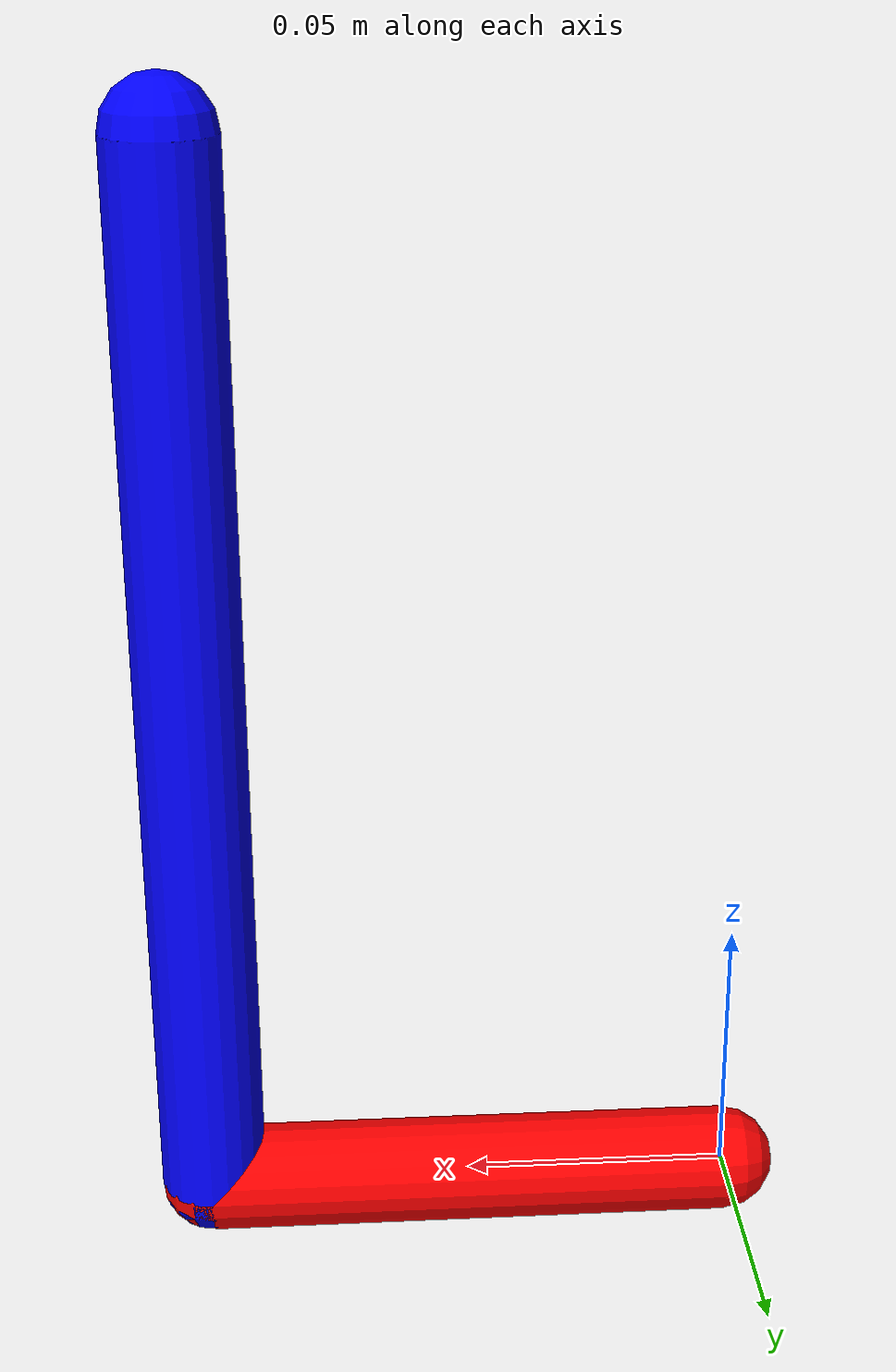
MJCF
<mujoco model="qube-servo">
    <option gravity="0 0 0"/> <!-- Sin gravedad -->
    <worldbody>
        <!-- Base fija -->
        <body name="base" pos="0 0 0">
            <!-- Primer brazo: rotación horizontal (ángulo phi) -->
            <joint name="joint_phi" type="hinge" axis="0 0 1" limited="true" range="-1.57 1.57"/>
            <geom type="capsule" fromto="0 0 0 0.1 0 0" size="0.01" rgba="1 0 0 1"/>

            <!-- Segundo brazo: rotación vertical (ángulo theta) -->
            <body name="arm" pos="0.1 0 0">
                <joint name="joint_theta" type="hinge" axis="0 1 0" limited="false"/>
                <geom type="capsule" fromto="0 0 0 0 0 0.2" size="0.01" rgba="0 0 1 1"/>
            </body>
        </body>
    </worldbody>
</mujoco>
